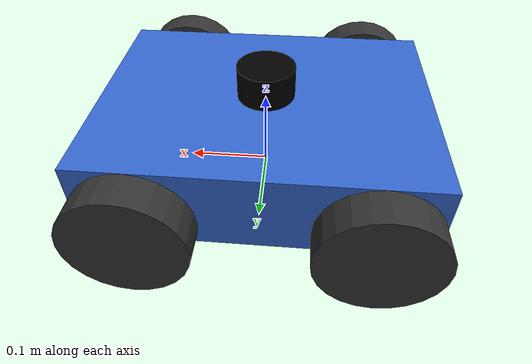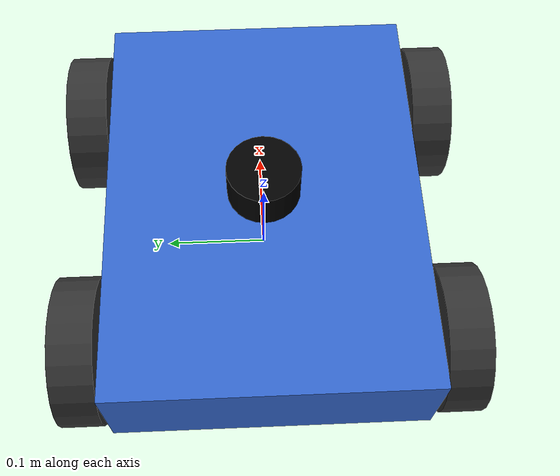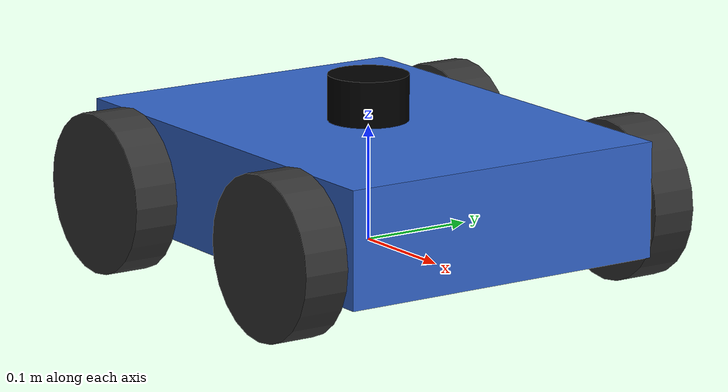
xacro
<?xml version="1.0"?>
<robot xmlns:xacro="http://www.ros.org/wiki/xacro" name="4wd_robot">

  <!-- Include robot components -->
  <xacro:include filename="$(find 4wd_robot)/urdf/robot_core.xacro" />
  <xacro:include filename="$(find 4wd_robot)/urdf/lidar.xacro" />
  <xacro:include filename="$(find 4wd_robot)/urdf/imu.xacro" />
  <xacro:include filename="$(find 4wd_robot)/urdf/gazebo_control.xacro" />

</robot>

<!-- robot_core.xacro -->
<robot xmlns:xacro="http://www.ros.org/wiki/xacro">

  <!-- ==================== Robot Properties ==================== -->
  <xacro:property name="chassis_mass"  value="5.0" />
  <xacro:property name="chassis_length" value="0.40" />
  <xacro:property name="chassis_width"  value="0.30" />
  <xacro:property name="chassis_height" value="0.10" />

  <xacro:property name="wheel_mass"   value="0.5" />
  <xacro:property name="wheel_radius" value="0.07" />
  <xacro:property name="wheel_width"  value="0.04" />

  <!-- Wheel positions relative to chassis centre -->
  <xacro:property name="wheel_x_offset" value="0.13" />   <!-- front/rear distance -->
  <xacro:property name="wheel_y_offset" value="0.175" />  <!-- left/right distance -->
  <xacro:property name="wheel_z_offset" value="-0.015" /> <!-- height offset -->

  <!-- ==================== Inertia Macros ==================== -->
  <xacro:macro name="box_inertia" params="m l w h">
    <inertial>
      <origin xyz="0 0 0" rpy="0 0 0"/>
      <mass value="${m}"/>
      <inertia ixx="${(m/12)*(w*w + h*h)}" ixy="0" ixz="0"
               iyy="${(m/12)*(l*l + h*h)}" iyz="0"
               izz="${(m/12)*(l*l + w*w)}"/>
    </inertial>
  </xacro:macro>

  <xacro:macro name="cylinder_inertia" params="m r h">
    <inertial>
      <origin xyz="0 0 0" rpy="0 0 0"/>
      <mass value="${m}"/>
      <inertia ixx="${(m/12)*(3*r*r + h*h)}" ixy="0" ixz="0"
               iyy="${(m/12)*(3*r*r + h*h)}" iyz="0"
               izz="${(m/2)*(r*r)}"/>
    </inertial>
  </xacro:macro>

  <!-- ==================== Wheel Macro ==================== -->
  <xacro:macro name="wheel" params="name x_pos y_pos z_pos">
    <link name="${name}_wheel">
      <visual>
        <geometry>
          <cylinder radius="${wheel_radius}" length="${wheel_width}"/>
        </geometry>
        <origin xyz="0 0 0" rpy="${pi/2} 0 0"/>
        <material name="dark_grey">
          <color rgba="0.2 0.2 0.2 1.0"/>
        </material>
      </visual>
      <collision>
        <geometry>
          <cylinder radius="${wheel_radius}" length="${wheel_width}"/>
        </geometry>
        <origin xyz="0 0 0" rpy="${pi/2} 0 0"/>
      </collision>
      <xacro:cylinder_inertia m="${wheel_mass}" r="${wheel_radius}" h="${wheel_width}"/>
    </link>

    <joint name="${name}_wheel_joint" type="continuous">
      <parent link="base_link"/>
      <child  link="${name}_wheel"/>
      <origin xyz="${x_pos} ${y_pos} ${z_pos}" rpy="0 0 0"/>
      <axis xyz="0 1 0"/>
      <dynamics damping="0.1" friction="0.1"/>
    </joint>
  </xacro:macro>

  <!-- ==================== Base Footprint ==================== -->
  <link name="base_footprint"/>

  <joint name="base_footprint_joint" type="fixed">
    <parent link="base_footprint"/>
    <child  link="base_link"/>
    <origin xyz="0 0 ${wheel_radius + wheel_z_offset}" rpy="0 0 0"/>
  </joint>

  <!-- ==================== Chassis ==================== -->
  <link name="base_link">
    <visual>
      <geometry>
        <box size="${chassis_length} ${chassis_width} ${chassis_height}"/>
      </geometry>
      <origin xyz="0 0 0" rpy="0 0 0"/>
      <material name="blue">
        <color rgba="0.2 0.4 0.8 1.0"/>
      </material>
    </visual>
    <collision>
      <geometry>
        <box size="${chassis_length} ${chassis_width} ${chassis_height}"/>
      </geometry>
      <origin xyz="0 0 0" rpy="0 0 0"/>
    </collision>
    <xacro:box_inertia m="${chassis_mass}" l="${chassis_length}"
                        w="${chassis_width}" h="${chassis_height}"/>
  </link>

  <!-- ==================== Four Wheels ==================== -->
  <xacro:wheel name="front_left"
               x_pos=" ${wheel_x_offset}"
               y_pos=" ${wheel_y_offset}"
               z_pos=" ${wheel_z_offset}"/>

  <xacro:wheel name="front_right"
               x_pos=" ${wheel_x_offset}"
               y_pos="-${wheel_y_offset}"
               z_pos=" ${wheel_z_offset}"/>

  <xacro:wheel name="rear_left"
               x_pos="-${wheel_x_offset}"
               y_pos=" ${wheel_y_offset}"
               z_pos=" ${wheel_z_offset}"/>

  <xacro:wheel name="rear_right"
               x_pos="-${wheel_x_offset}"
               y_pos="-${wheel_y_offset}"
               z_pos=" ${wheel_z_offset}"/>

</robot>

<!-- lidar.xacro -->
<robot xmlns:xacro="http://www.ros.org/wiki/xacro">

  <!-- 2-D laser scan sensor (e.g. RPLidar A1) -->

  <xacro:property name="lidar_mass"   value="0.1"/>
  <xacro:property name="lidar_radius" value="0.035"/>
  <xacro:property name="lidar_height" value="0.04"/>

  <!-- Mount on top of chassis -->
  <link name="lidar_link">
    <visual>
      <geometry>
        <cylinder radius="${lidar_radius}" length="${lidar_height}"/>
      </geometry>
      <origin xyz="0 0 0" rpy="0 0 0"/>
      <material name="black">
        <color rgba="0.0 0.0 0.0 1.0"/>
      </material>
    </visual>
    <collision>
      <geometry>
        <cylinder radius="${lidar_radius}" length="${lidar_height}"/>
      </geometry>
      <origin xyz="0 0 0" rpy="0 0 0"/>
    </collision>
    <inertial>
      <origin xyz="0 0 0" rpy="0 0 0"/>
      <mass value="${lidar_mass}"/>
      <inertia ixx="${(lidar_mass/12)*(3*lidar_radius*lidar_radius + lidar_height*lidar_height)}"
               ixy="0" ixz="0"
               iyy="${(lidar_mass/12)*(3*lidar_radius*lidar_radius + lidar_height*lidar_height)}"
               iyz="0"
               izz="${(lidar_mass/2)*(lidar_radius*lidar_radius)}"/>
    </inertial>
  </link>

  <joint name="lidar_joint" type="fixed">
    <parent link="base_link"/>
    <child  link="lidar_link"/>
    <!-- Mounted on top-centre of chassis; chassis_height/2 = 0.05 -->
    <origin xyz="0 0 0.07" rpy="0 0 0"/>
  </joint>

  <!-- Gazebo lidar plugin -->
  <gazebo reference="lidar_link">
    <sensor name="lidar_sensor" type="ray">
      <always_on>true</always_on>
      <visualize>false</visualize>
      <update_rate>10</update_rate>
      <ray>
        <scan>
          <horizontal>
            <samples>360</samples>
            <resolution>1</resolution>
            <min_angle>-3.14159</min_angle>
            <max_angle> 3.14159</max_angle>
          </horizontal>
        </scan>
        <range>
          <min>0.12</min>
          <max>10.0</max>
          <resolution>0.01</resolution>
        </range>
        <noise>
          <type>gaussian</type>
          <mean>0.0</mean>
          <stddev>0.01</stddev>
        </noise>
      </ray>
      <plugin name="lidar_plugin" filename="libgazebo_ros_ray_sensor.so">
        <ros>
          <remapping>~/out:=scan</remapping>
        </ros>
        <output_type>sensor_msgs/LaserScan</output_type>
        <frame_name>lidar_link</frame_name>
      </plugin>
    </sensor>
  </gazebo>

</robot>

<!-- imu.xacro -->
<robot xmlns:xacro="http://www.ros.org/wiki/xacro">

  <!-- IMU sensor link -->

  <link name="imu_link">
    <visual>
      <geometry>
        <box size="0.02 0.02 0.01"/>
      </geometry>
      <origin xyz="0 0 0" rpy="0 0 0"/>
      <material name="white">
        <color rgba="1.0 1.0 1.0 1.0"/>
      </material>
    </visual>
    <collision>
      <geometry>
        <box size="0.02 0.02 0.01"/>
      </geometry>
    </collision>
    <inertial>
      <origin xyz="0 0 0" rpy="0 0 0"/>
      <mass value="0.01"/>
      <inertia ixx="1e-6" ixy="0" ixz="0"
               iyy="1e-6" iyz="0"
               izz="1e-6"/>
    </inertial>
  </link>

  <joint name="imu_joint" type="fixed">
    <parent link="base_link"/>
    <child  link="imu_link"/>
    <origin xyz="0 0 0.05" rpy="0 0 0"/>
  </joint>

  <!-- Gazebo IMU plugin -->
  <gazebo reference="imu_link">
    <sensor name="imu_sensor" type="imu">
      <always_on>true</always_on>
      <update_rate>100</update_rate>
      <visualize>false</visualize>
      <imu>
        <angular_velocity>
          <x><noise type="gaussian"><mean>0.0</mean><stddev>2e-4</stddev></noise></x>
          <y><noise type="gaussian"><mean>0.0</mean><stddev>2e-4</stddev></noise></y>
          <z><noise type="gaussian"><mean>0.0</mean><stddev>2e-4</stddev></noise></z>
        </angular_velocity>
        <linear_acceleration>
          <x><noise type="gaussian"><mean>0.0</mean><stddev>1.7e-2</stddev></noise></x>
          <y><noise type="gaussian"><mean>0.0</mean><stddev>1.7e-2</stddev></noise></y>
          <z><noise type="gaussian"><mean>0.0</mean><stddev>1.7e-2</stddev></noise></z>
        </linear_acceleration>
      </imu>
      <plugin name="imu_plugin" filename="libgazebo_ros_imu_sensor.so">
        <ros>
          <remapping>~/out:=imu</remapping>
        </ros>
        <initial_orientation_as_reference>false</initial_orientation_as_reference>
        <frame_name>imu_link</frame_name>
      </plugin>
    </sensor>
  </gazebo>

</robot>
